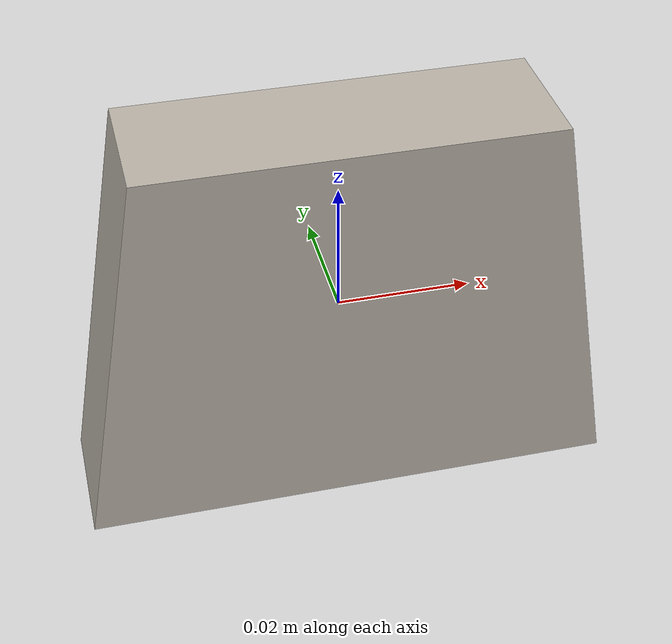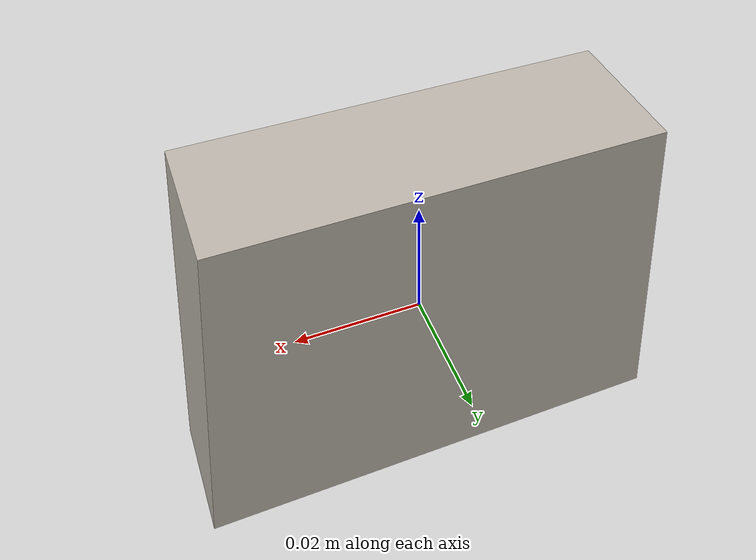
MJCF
<mujoco model="trapezium">
  <default>
    <default class="visual">
      <geom group="2" type="mesh" contype="0" conaffinity="0"/>
    </default>
    <default class="collision">
      <geom group="3" type="mesh"/>
    </default>
  </default>
  <asset>
    <texture type="2d" name="texture" file="texture.png"/>
    <material name="Material_0.019" texture="texture" specular="0.0" shininess="0.25"/>
    <mesh file="trapezium.obj"/>
  </asset>
  <worldbody>
    <body name="trapezium">
      <freejoint/>
      <geom material="Material_0.019" mesh="trapezium" class="visual"/>
      <geom mesh="trapezium" class="collision"/>
    </body>
  </worldbody>
</mujoco>
